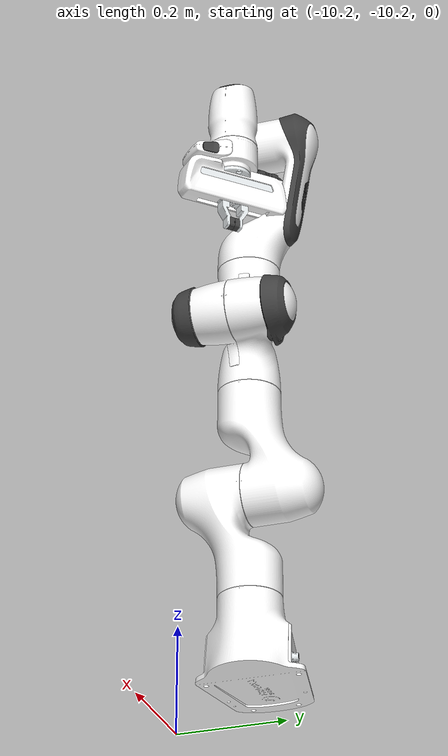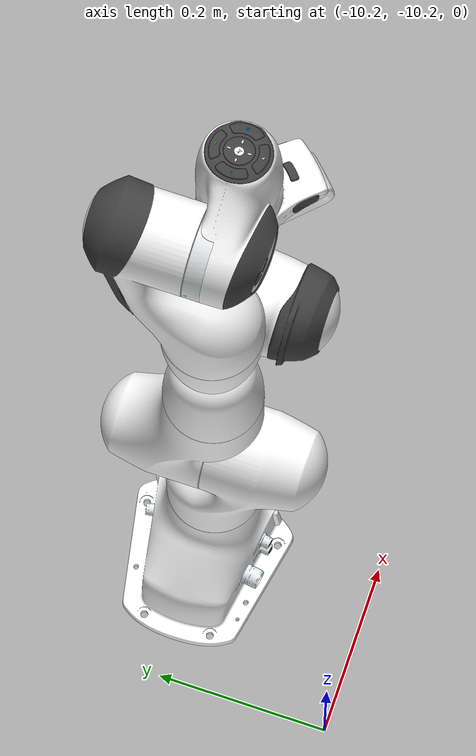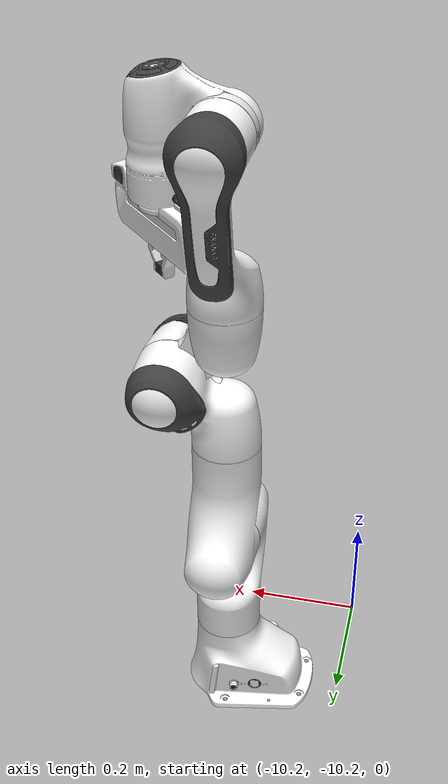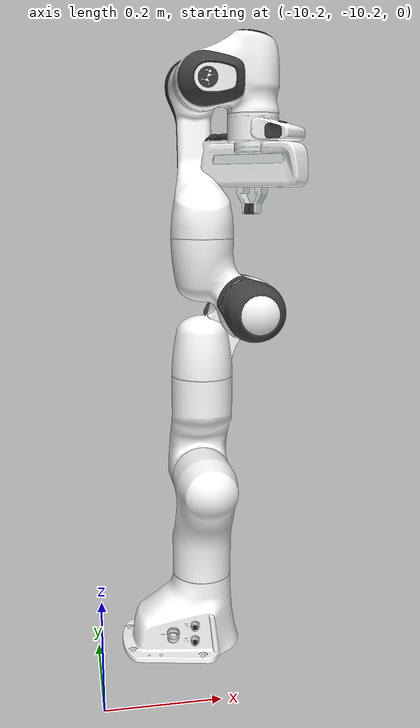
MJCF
<mujoco model="panda2">
  <compiler angle="radian" meshdir="assets"/>

  <option integrator="implicit"/>

  <default>
    <default class="panda2">
      <material specular="0.5" shininess="0.25"/>
      <joint armature="0.1" damping="1" axis="0 0 1" limited="true" range="-2.8973 2.8973"/>
      <general ctrllimited="true" forcelimited="true" dyntype="none" biastype="affine"
          ctrlrange="-2.8973 2.8973" forcerange="-87 87"/>
      <default class="finger2">
        <joint axis="0 1 0" type="slide" range="0 0.04"/>
      </default>

      <default class="visual2">
        <geom type="mesh" contype="0" conaffinity="0" group="2"/>
      </default>
      <default class="collision2">
        <geom type="mesh" group="3"/>
        <default class="fingertip2_pad_collision_1">
          <geom type="box" size="0.0085 0.004 0.0085" pos="0 0.0055 0.0445"/>
        </default>
        <default class="fingertip2_pad_collision_2">
          <geom type="box" size="0.003 0.002 0.003" pos="0.0055 0.002 0.05"/>
        </default>
        <default class="fingertip2_pad_collision_3">
          <geom type="box" size="0.003 0.002 0.003" pos="-0.0055 0.002 0.05"/>
        </default>
        <default class="fingertip2_pad_collision_4">
          <geom type="box" size="0.003 0.002 0.0035" pos="0.0055 0.002 0.0395"/>
        </default>
        <default class="fingertip2_pad_collision_5">
          <geom type="box" size="0.003 0.002 0.0035" pos="-0.0055 0.002 0.0395"/>
        </default>
      </default>
    </default>
  </default>

  <asset>
    <material class="panda2" name="white2" rgba="1 1 1 1"/>
    <material class="panda2" name="off_white2" rgba="0.901961 0.921569 0.929412 1"/>
    <material class="panda2" name="black2" rgba="0.25 0.25 0.25 1"/>
    <material class="panda2" name="green2" rgba="0 1 0 1"/>
    <material class="panda2" name="light_blue2" rgba="0.039216 0.541176 0.780392 1"/>

    <!-- collision2 meshes -->
    <mesh name="link0b_c" file="link0.stl"/>
    <mesh name="link1b_c" file="link1.stl"/>
    <mesh name="link2b_c" file="link2.stl"/>
    <mesh name="link3b_c" file="link3.stl"/>
    <mesh name="link4b_c" file="link4.stl"/>
    <mesh name="link5b_c0" file="link5_collision_0.obj"/>
    <mesh name="link5b_c1" file="link5_collision_1.obj"/>
    <mesh name="link5b_c2" file="link5_collision_2.obj"/>
    <mesh name="link6b_c" file="link6.stl"/>
    <mesh name="link7b_c" file="link7.stl"/>
    <mesh name="hand2_c" file="hand.stl"/>

    <!-- visual2 meshes -->
    <mesh file="link0_0.obj"/>
    <mesh file="link0_1.obj"/>
    <mesh file="link0_2.obj"/>
    <mesh file="link0_3.obj"/>
    <mesh file="link0_4.obj"/>
    <mesh file="link0_5.obj"/>
    <mesh file="link0_7.obj"/>
    <mesh file="link0_8.obj"/>
    <mesh file="link0_9.obj"/>
    <mesh file="link0_10.obj"/>
    <mesh file="link0_11.obj"/>
    <mesh file="link1.obj"/>
    <mesh file="link2.obj"/>
    <mesh file="link3_0.obj"/>
    <mesh file="link3_1.obj"/>
    <mesh file="link3_2.obj"/>
    <mesh file="link3_3.obj"/>
    <mesh file="link4_0.obj"/>
    <mesh file="link4_1.obj"/>
    <mesh file="link4_2.obj"/>
    <mesh file="link4_3.obj"/>
    <mesh file="link5_0.obj"/>
    <mesh file="link5_1.obj"/>
    <mesh file="link5_2.obj"/>
    <mesh file="link6_0.obj"/>
    <mesh file="link6_1.obj"/>
    <mesh file="link6_2.obj"/>
    <mesh file="link6_3.obj"/>
    <mesh file="link6_4.obj"/>
    <mesh file="link6_5.obj"/>
    <mesh file="link6_6.obj"/>
    <mesh file="link6_7.obj"/>
    <mesh file="link6_8.obj"/>
    <mesh file="link6_9.obj"/>
    <mesh file="link6_10.obj"/>
    <mesh file="link6_11.obj"/>
    <mesh file="link6_12.obj"/>
    <mesh file="link6_13.obj"/>
    <mesh file="link6_14.obj"/>
    <mesh file="link6_15.obj"/>
    <mesh file="link6_16.obj"/>
    <mesh file="link7_0.obj"/>
    <mesh file="link7_1.obj"/>
    <mesh file="link7_2.obj"/>
    <mesh file="link7_3.obj"/>
    <mesh file="link7_4.obj"/>
    <mesh file="link7_5.obj"/>
    <mesh file="link7_6.obj"/>
    <mesh file="link7_7.obj"/>
    <mesh file="hand_0.obj"/>
    <mesh file="hand_1.obj"/>
    <mesh file="hand_2.obj"/>
    <mesh file="hand_3.obj"/>
    <mesh file="hand_4.obj"/>
    <mesh file="finger_0.obj"/>
    <mesh file="finger_1.obj"/>
  </asset>

  <worldbody>
    <body name="link2_0" pos="-10 -10 0" childclass="panda2">
      <inertial mass="0.629769" pos="-0.041018 -0.00014 0.049974"
          fullinertia="0.00315 0.00388 0.004285 8.2904e-7 0.00015 8.2299e-6"/>
      <geom name="2_link0_0" mesh="link0_0" material="off_white2" class="visual2"/>
      <geom mesh="link0_1" material="black2" class="visual2"/>
      <geom mesh="link0_2" material="off_white2" class="visual2"/>
      <geom mesh="link0_3" material="black2" class="visual2"/>
      <geom mesh="link0_4" material="off_white2" class="visual2"/>
      <geom mesh="link0_5" material="black2" class="visual2"/>
      <geom mesh="link0_7" material="white2" class="visual2"/>
      <geom mesh="link0_8" material="white2" class="visual2"/>
      <geom mesh="link0_9" material="black2" class="visual2"/>
      <geom mesh="link0_10" material="off_white2" class="visual2"/>
      <geom mesh="link0_11" material="white2" class="visual2"/>
      <geom mesh="link0b_c" class="collision2"/>
      <body name="link2_1" pos="0 0 0.333">
        <inertial mass="4.970684" pos="0.003875 0.002081 -0.04762"
            fullinertia="0.70337 0.70661 0.0091170 -0.00013900 0.0067720 0.019169"/>
        <joint name="joint1b"/>
        <geom material="white2" mesh="link1" class="visual2"/>
        <geom mesh="link1b_c" class="collision2"/>
        <body name="link2_2" quat="1 -1 0 0">
          <inertial mass="0.646926" pos="-0.003141 -0.02872 0.003495"
              fullinertia="0.0079620 2.8110e-2 2.5995e-2 -3.925e-3 1.0254e-2 7.04e-4"/>
          <joint name="joint2b" range="-1.7628 1.7628"/>
          <geom material="white2" mesh="link2" class="visual2"/>
          <geom mesh="link2b_c" class="collision2"/>
          <body name="link2_3" pos="0 -0.316 0" quat="1 1 0 0">
            <joint name="joint3b"/>
            <inertial mass="3.228604" pos="0.027518 3.9252e-2 -6.6502e-2"
                fullinertia="3.7242e-2 3.6155e-2 1.083e-2 -4.761e-3 -1.1396e-2 -1.2805e-2"/>
            <geom mesh="link3_0" material="white2" class="visual2"/>
            <geom mesh="link3_1" material="white2" class="visual2"/>
            <geom mesh="link3_2" material="white2" class="visual2"/>
            <geom mesh="link3_3" material="black2" class="visual2"/>
            <geom mesh="link3b_c" class="collision2"/>
            <body name="link2_4" pos="0.0825 0 0" quat="1 1 0 0">
              <inertial mass="3.587895" pos="-5.317e-2 1.04419e-1 2.7454e-2"
                  fullinertia="2.5853e-2 1.9552e-2 2.8323e-2 7.796e-3 -1.332e-3 8.641e-3"/>
              <joint name="joint4b" range="-3.0718 -0.0698"/>
              <geom mesh="link4_0" material="white2" class="visual2"/>
              <geom mesh="link4_1" material="white2" class="visual2"/>
              <geom mesh="link4_2" material="black2" class="visual2"/>
              <geom mesh="link4_3" material="white2" class="visual2"/>
              <geom mesh="link4b_c" class="collision2"/>
              <body name="link2_5" pos="-0.0825 0.384 0" quat="1 -1 0 0">
                <inertial mass="1.225946" pos="-1.1953e-2 4.1065e-2 -3.8437e-2"
                    fullinertia="3.5549e-2 2.9474e-2 8.627e-3 -2.117e-3 -4.037e-3 2.29e-4"/>
                <joint name="joint5b"/>
                <geom mesh="link5_0" material="black2" class="visual2"/>
                <geom mesh="link5_1" material="white2" class="visual2"/>
                <geom mesh="link5_2" material="white2" class="visual2"/>
                <geom mesh="link5b_c0" class="collision2"/>
                <geom mesh="link5b_c1" class="collision2"/>
                <geom mesh="link5b_c2" class="collision2"/>
                <body name="link2_6" quat="1 1 0 0">
                  <inertial mass="1.666555" pos="0.060149 -1.4117e-2 -1.0517e-2"
                      fullinertia="1.964e-3 4.354e-3 5.433e-3 1.09e-4 -1.158e-3 3.41e-4"/>
                  <joint name="joint6b" range="-0.0175 3.7525"/>
                  <geom mesh="link6_0" material="off_white2" class="visual2"/>
                  <geom mesh="link6_1" material="white2" class="visual2"/>
                  <geom mesh="link6_2" material="black2" class="visual2"/>
                  <geom mesh="link6_3" material="white2" class="visual2"/>
                  <geom mesh="link6_4" material="white2" class="visual2"/>
                  <geom mesh="link6_5" material="white2" class="visual2"/>
                  <geom mesh="link6_6" material="white2" class="visual2"/>
                  <geom mesh="link6_7" material="light_blue2" class="visual2"/>
                  <geom mesh="link6_8" material="light_blue2" class="visual2"/>
                  <geom mesh="link6_9" material="black2" class="visual2"/>
                  <geom mesh="link6_10" material="black2" class="visual2"/>
                  <geom mesh="link6_11" material="white2" class="visual2"/>
                  <geom mesh="link6_12" material="green2" class="visual2"/>
                  <geom mesh="link6_13" material="white2" class="visual2"/>
                  <geom mesh="link6_14" material="black2" class="visual2"/>
                  <geom mesh="link6_15" material="black2" class="visual2"/>
                  <geom mesh="link6_16" material="white2" class="visual2"/>
                  <geom mesh="link6b_c" class="collision2"/>
                  <body name="link2_7" pos="0.088 0 0" quat="1 1 0 0">
                    <inertial mass="7.35522e-01" pos="0.010517 -4.252e-3 6.1597e-2"
                        fullinertia="1.2516e-2 1.0027e-2 4.815e-3 -4.28e-4 -1.196e-3 -7.41e-4"/>
                    <joint name="joint7b"/>
                    <geom mesh="link7_0" material="white2" class="visual2"/>
                    <geom mesh="link7_1" material="black2" class="visual2"/>
                    <geom mesh="link7_2" material="black2" class="visual2"/>
                    <geom mesh="link7_3" material="black2" class="visual2"/>
                    <geom mesh="link7_4" material="black2" class="visual2"/>
                    <geom mesh="link7_5" material="black2" class="visual2"/>
                    <geom mesh="link7_6" material="black2" class="visual2"/>
                    <geom mesh="link7_7" material="white2" class="visual2"/>
                    <geom mesh="link7b_c" class="collision2"/>
                    <body name="link2_8" pos="0 0 0.107">
                      <body name="hand2" quat="0.9238795 0 0 -0.3826834">
                        <inertial mass="0.73" pos="-0.01 0 0.03"
                            diaginertia="0.001 0.0025 0.0017"/>
                        <geom mesh="hand_0" material="off_white2" class="visual2"/>
                        <geom mesh="hand_1" material="black2" class="visual2"/>
                        <geom mesh="hand_2" material="black2" class="visual2"/>
                        <geom mesh="hand_3" material="white2" class="visual2"/>
                        <geom mesh="hand_4" material="off_white2" class="visual2"/>
                        <geom mesh="hand2_c" class="collision2"/>
                        <body name="left_finger2" pos="0 0 0.0584">
                          <inertial mass="0.015" pos="0 0 0"
                              diaginertia="2.375e-6 2.375e-6 7.5e-7"/>
                          <joint name="finger2_joint1" class="finger2"/>
                          <geom mesh="finger_0" material="off_white2" class="visual2"/>
                          <geom mesh="finger_1" material="black2" class="visual2"/>
                          <geom mesh="finger_0" class="collision2"/>
                          <geom class="fingertip2_pad_collision_1"/>
                          <geom class="fingertip2_pad_collision_2"/>
                          <geom class="fingertip2_pad_collision_3"/>
                          <geom class="fingertip2_pad_collision_4"/>
                          <geom class="fingertip2_pad_collision_5"/>
                        </body>
                        <body name="right_finger2" pos="0 0 0.0584" quat="0 0 0 1">
                          <inertial mass="0.015" pos="0 0 0"
                              diaginertia="2.375e-6 2.375e-6 7.5e-7"/>
                          <joint name="finger2_joint2" class="finger2"/>
                          <geom mesh="finger_0" material="off_white2" class="visual2"/>
                          <geom mesh="finger_1" material="black2" class="visual2"/>
                          <geom mesh="finger_0" class="collision2"/>
                          <geom class="fingertip2_pad_collision_1"/>
                          <geom class="fingertip2_pad_collision_2"/>
                          <geom class="fingertip2_pad_collision_3"/>
                          <geom class="fingertip2_pad_collision_4"/>
                          <geom class="fingertip2_pad_collision_5"/>
                        </body>
                      </body>
                    </body>
                  </body>
                </body>
              </body>
            </body>
          </body>
        </body>
      </body>
    </body>
  </worldbody>

  <contact>
    <exclude body1="link2_7" body2="link2_8"/>
  </contact>

  <tendon>
    <fixed name="split2">
      <joint joint="finger2_joint1" coef="0.5"/>
      <joint joint="finger2_joint2" coef="0.5"/>
    </fixed>
  </tendon>

  <equality>
    <joint joint1="finger2_joint1" joint2="finger2_joint2" solimp="0.95 0.99 0.001" solref="0.005 1"/>
  </equality>

  <actuator>
    <general class="panda2" name="actuator1b" joint="joint1b" gainprm="4500" biasprm="0 -4500 -450"/>
    <general class="panda2" name="actuator2b" joint="joint2b" gainprm="4500" biasprm="0 -4500 -450"
        ctrlrange="-1.7628 1.7628"/>
    <general class="panda2" name="actuator3b" joint="joint3b" gainprm="3500" biasprm="0 -3500 -350"/>
    <general class="panda2" name="actuator4b" joint="joint4b" gainprm="3500" biasprm="0 -3500 -350"
        ctrlrange="-3.0718 -0.0698"/>
    <general class="panda2" name="actuator5b" joint="joint5b" gainprm="2000" biasprm="0 -2000 -200"
        forcerange="-12 12"/>
    <general class="panda2" name="actuator6b" joint="joint6b" gainprm="2000" biasprm="0 -2000 -200"
        forcerange="-12 12" ctrlrange="-0.0175 3.7525"/>
    <general class="panda2" name="actuator7b" joint="joint7b" gainprm="2000" biasprm="0 -2000 -200"
        forcerange="-12 12"/>
    <!-- Remap original ctrlrange (0, 0.04) to (0, 255): 0.04 * 100 / 255 = 0.01568627451-->
    <general class="panda2" name="actuator8b" tendon="split2" forcerange="-100 100" ctrlrange="0 255"
        gainprm="0.01568627451 0 0" biasprm="0 -100 -10"/>
  </actuator>

</mujoco>
